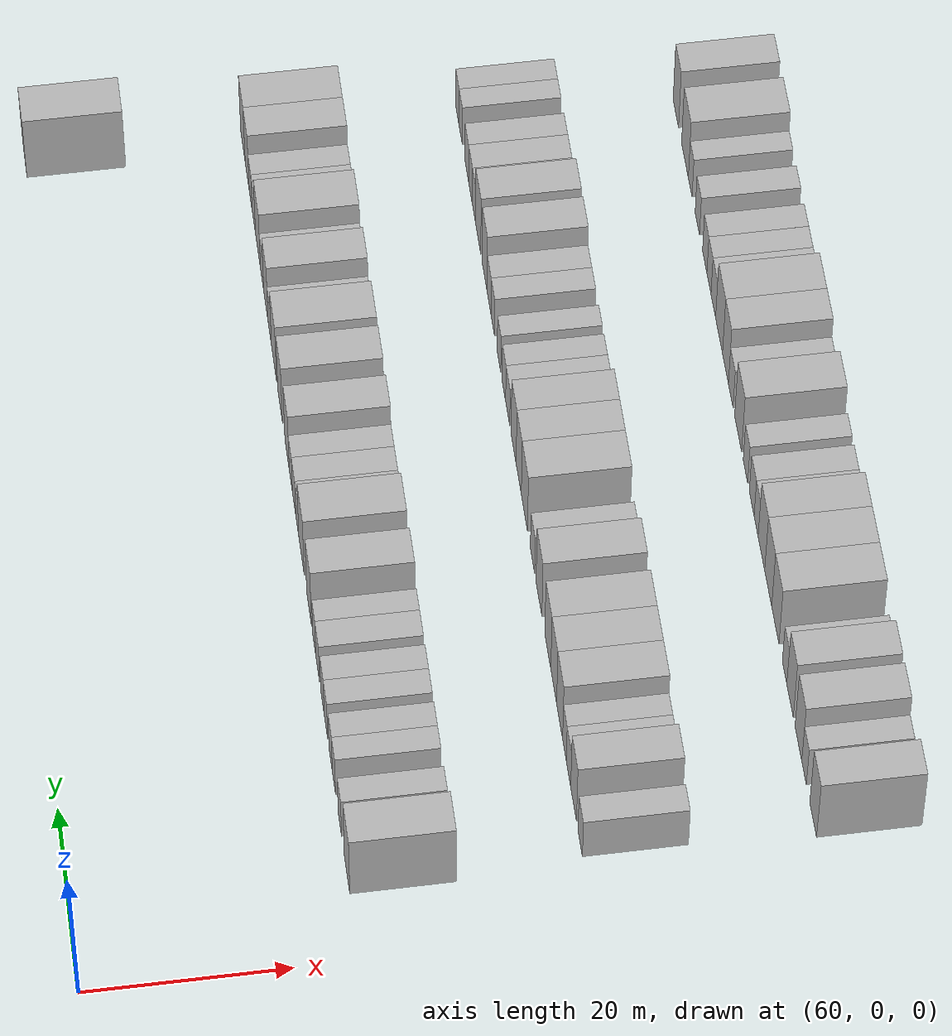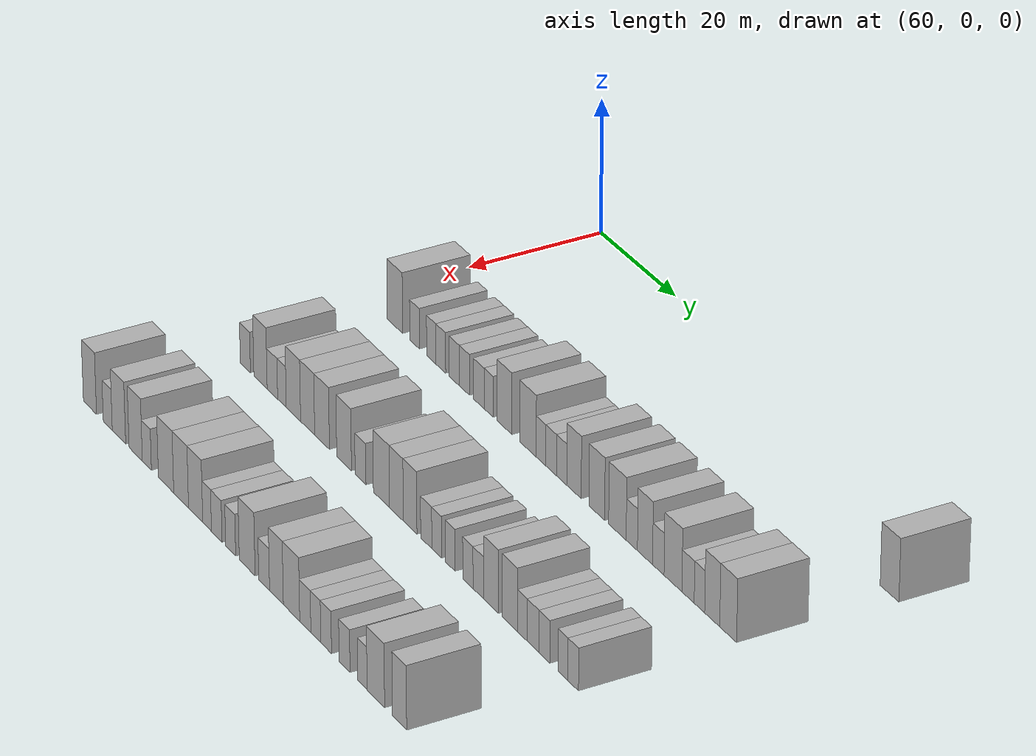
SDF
<sdf version="1.6">
 <world name="default">
  <model name="building_492">
   <static>1</static>
   <pose>69.0000 97.0537 0 0.000000 0.000000 0.000000</pose>
   <link name="link">
    <pose>0 0 4.50 0 0 0</pose>
    <collision name="collision"><geometry><box><size>10.0000 4.4009 9.0000</size></box></geometry></collision>
    <visual name="visual">
     <cast_shadows>0</cast_shadows>
     <geometry><box><size>10.0000 4.4009 9.0000</size></box></geometry>
     <material>
      <script>
       <uri>model://HANNAS_wall/materials/scripts</uri>
       <uri>model://HANNAS_wall/materials/textures</uri>
       <name>vrc/HANNAS_wall</name>
      </script>
     </material>
    </visual>
   </link>
  </model>
  <model name="building_664">
   <static>1</static>
   <pose>91.0000 9.3950 0 0.000000 0.000000 0.000000</pose>
   <link name="link">
    <pose>0 0 4.50 0 0 0</pose>
    <collision name="collision"><geometry><box><size>10.0000 4.2941 9.0000</size></box></geometry></collision>
    <visual name="visual">
     <cast_shadows>0</cast_shadows>
     <geometry><box><size>10.0000 4.2941 9.0000</size></box></geometry>
     <material>
      <script>
       <uri>model://HANNAS_wall/materials/scripts</uri>
       <uri>model://HANNAS_wall/materials/textures</uri>
       <name>vrc/HANNAS_wall</name>
      </script>
     </material>
    </visual>
   </link>
  </model>
  <model name="building_665">
   <static>1</static>
   <pose>91.0000 14.8744 0 0.000000 0.000000 0.000000</pose>
   <link name="link">
    <pose>0 0 3.00 0 0 0</pose>
    <collision name="collision"><geometry><box><size>10.0000 2.6647 6.0000</size></box></geometry></collision>
    <visual name="visual">
     <cast_shadows>0</cast_shadows>
     <geometry><box><size>10.0000 2.6647 6.0000</size></box></geometry>
     <material>
      <script>
       <uri>model://HANNAS_wall/materials/scripts</uri>
       <uri>model://HANNAS_wall/materials/textures</uri>
       <name>vrc/HANNAS_wall</name>
      </script>
     </material>
    </visual>
   </link>
  </model>
  <model name="building_666">
   <static>1</static>
   <pose>91.0000 19.4784 0 0.000000 0.000000 0.000000</pose>
   <link name="link">
    <pose>0 0 3.00 0 0 0</pose>
    <collision name="collision"><geometry><box><size>10.0000 2.5432 6.0000</size></box></geometry></collision>
    <visual name="visual">
     <cast_shadows>0</cast_shadows>
     <geometry><box><size>10.0000 2.5432 6.0000</size></box></geometry>
     <material>
      <script>
       <uri>model://HANNAS_wall/materials/scripts</uri>
       <uri>model://HANNAS_wall/materials/textures</uri>
       <name>vrc/HANNAS_wall</name>
      </script>
     </material>
    </visual>
   </link>
  </model>
  <model name="building_667">
   <static>1</static>
   <pose>91.0000 22.0852 0 0.000000 0.000000 0.000000</pose>
   <link name="link">
    <pose>0 0 3.00 0 0 0</pose>
    <collision name="collision"><geometry><box><size>10.0000 2.6705 6.0000</size></box></geometry></collision>
    <visual name="visual">
     <cast_shadows>0</cast_shadows>
     <geometry><box><size>10.0000 2.6705 6.0000</size></box></geometry>
     <material>
      <script>
       <uri>model://HANNAS_wall/materials/scripts</uri>
       <uri>model://HANNAS_wall/materials/textures</uri>
       <name>vrc/HANNAS_wall</name>
      </script>
     </material>
    </visual>
   </link>
  </model>
  <model name="building_668">
   <static>1</static>
   <pose>91.0000 25.7963 0 0.000000 0.000000 0.000000</pose>
   <link name="link">
    <pose>0 0 3.00 0 0 0</pose>
    <collision name="collision"><geometry><box><size>10.0000 2.7516 6.0000</size></box></geometry></collision>
    <visual name="visual">
     <cast_shadows>0</cast_shadows>
     <geometry><box><size>10.0000 2.7516 6.0000</size></box></geometry>
     <material>
      <script>
       <uri>model://HANNAS_wall/materials/scripts</uri>
       <uri>model://HANNAS_wall/materials/textures</uri>
       <name>vrc/HANNAS_wall</name>
      </script>
     </material>
    </visual>
   </link>
  </model>
  <model name="building_669">
   <static>1</static>
   <pose>91.0000 28.5302 0 0.000000 0.000000 0.000000</pose>
   <link name="link">
    <pose>0 0 3.00 0 0 0</pose>
    <collision name="collision"><geometry><box><size>10.0000 2.7163 6.0000</size></box></geometry></collision>
    <visual name="visual">
     <cast_shadows>0</cast_shadows>
     <geometry><box><size>10.0000 2.7163 6.0000</size></box></geometry>
     <material>
      <script>
       <uri>model://HANNAS_wall/materials/scripts</uri>
       <uri>model://HANNAS_wall/materials/textures</uri>
       <name>vrc/HANNAS_wall</name>
      </script>
     </material>
    </visual>
   </link>
  </model>
  <model name="building_670">
   <static>1</static>
   <pose>91.0000 32.3657 0 0.000000 0.000000 0.000000</pose>
   <link name="link">
    <pose>0 0 3.00 0 0 0</pose>
    <collision name="collision"><geometry><box><size>10.0000 2.9545 6.0000</size></box></geometry></collision>
    <visual name="visual">
     <cast_shadows>0</cast_shadows>
     <geometry><box><size>10.0000 2.9545 6.0000</size></box></geometry>
     <material>
      <script>
       <uri>model://HANNAS_wall/materials/scripts</uri>
       <uri>model://HANNAS_wall/materials/textures</uri>
       <name>vrc/HANNAS_wall</name>
      </script>
     </material>
    </visual>
   </link>
  </model>
  <model name="building_671">
   <static>1</static>
   <pose>91.0000 35.0655 0 0.000000 0.000000 0.000000</pose>
   <link name="link">
    <pose>0 0 3.00 0 0 0</pose>
    <collision name="collision"><geometry><box><size>10.0000 2.4452 6.0000</size></box></geometry></collision>
    <visual name="visual">
     <cast_shadows>0</cast_shadows>
     <geometry><box><size>10.0000 2.4452 6.0000</size></box></geometry>
     <material>
      <script>
       <uri>model://HANNAS_wall/materials/scripts</uri>
       <uri>model://HANNAS_wall/materials/textures</uri>
       <name>vrc/HANNAS_wall</name>
      </script>
     </material>
    </visual>
   </link>
  </model>
  <model name="building_672">
   <static>1</static>
   <pose>91.0000 39.2700 0 0.000000 0.000000 0.000000</pose>
   <link name="link">
    <pose>0 0 4.50 0 0 0</pose>
    <collision name="collision"><geometry><box><size>10.0000 3.9639 9.0000</size></box></geometry></collision>
    <visual name="visual">
     <cast_shadows>0</cast_shadows>
     <geometry><box><size>10.0000 3.9639 9.0000</size></box></geometry>
     <material>
      <script>
       <uri>model://HANNAS_wall/materials/scripts</uri>
       <uri>model://HANNAS_wall/materials/textures</uri>
       <name>vrc/HANNAS_wall</name>
      </script>
     </material>
    </visual>
   </link>
  </model>
  <model name="building_673">
   <static>1</static>
   <pose>91.0000 45.4640 0 0.000000 0.000000 0.000000</pose>
   <link name="link">
    <pose>0 0 4.50 0 0 0</pose>
    <collision name="collision"><geometry><box><size>10.0000 4.4241 9.0000</size></box></geometry></collision>
    <visual name="visual">
     <cast_shadows>0</cast_shadows>
     <geometry><box><size>10.0000 4.4241 9.0000</size></box></geometry>
     <material>
      <script>
       <uri>model://HANNAS_wall/materials/scripts</uri>
       <uri>model://HANNAS_wall/materials/textures</uri>
       <name>vrc/HANNAS_wall</name>
      </script>
     </material>
    </visual>
   </link>
  </model>
  <model name="building_674">
   <static>1</static>
   <pose>91.0000 48.8937 0 0.000000 0.000000 0.000000</pose>
   <link name="link">
    <pose>0 0 3.00 0 0 0</pose>
    <collision name="collision"><geometry><box><size>10.0000 2.4353 6.0000</size></box></geometry></collision>
    <visual name="visual">
     <cast_shadows>0</cast_shadows>
     <geometry><box><size>10.0000 2.4353 6.0000</size></box></geometry>
     <material>
      <script>
       <uri>model://HANNAS_wall/materials/scripts</uri>
       <uri>model://HANNAS_wall/materials/textures</uri>
       <name>vrc/HANNAS_wall</name>
      </script>
     </material>
    </visual>
   </link>
  </model>
  <model name="building_675">
   <static>1</static>
   <pose>91.0000 51.5279 0 0.000000 0.000000 0.000000</pose>
   <link name="link">
    <pose>0 0 3.00 0 0 0</pose>
    <collision name="collision"><geometry><box><size>10.0000 2.8330 6.0000</size></box></geometry></collision>
    <visual name="visual">
     <cast_shadows>0</cast_shadows>
     <geometry><box><size>10.0000 2.8330 6.0000</size></box></geometry>
     <material>
      <script>
       <uri>model://HANNAS_wall/materials/scripts</uri>
       <uri>model://HANNAS_wall/materials/textures</uri>
       <name>vrc/HANNAS_wall</name>
      </script>
     </material>
    </visual>
   </link>
  </model>
  <model name="building_676">
   <static>1</static>
   <pose>91.0000 54.2586 0 0.000000 0.000000 0.000000</pose>
   <link name="link">
    <pose>0 0 3.00 0 0 0</pose>
    <collision name="collision"><geometry><box><size>10.0000 2.6286 6.0000</size></box></geometry></collision>
    <visual name="visual">
     <cast_shadows>0</cast_shadows>
     <geometry><box><size>10.0000 2.6286 6.0000</size></box></geometry>
     <material>
      <script>
       <uri>model://HANNAS_wall/materials/scripts</uri>
       <uri>model://HANNAS_wall/materials/textures</uri>
       <name>vrc/HANNAS_wall</name>
      </script>
     </material>
    </visual>
   </link>
  </model>
  <model name="building_677">
   <static>1</static>
   <pose>91.0000 57.4469 0 0.000000 0.000000 0.000000</pose>
   <link name="link">
    <pose>0 0 4.50 0 0 0</pose>
    <collision name="collision"><geometry><box><size>10.0000 3.7480 9.0000</size></box></geometry></collision>
    <visual name="visual">
     <cast_shadows>0</cast_shadows>
     <geometry><box><size>10.0000 3.7480 9.0000</size></box></geometry>
     <material>
      <script>
       <uri>model://HANNAS_wall/materials/scripts</uri>
       <uri>model://HANNAS_wall/materials/textures</uri>
       <name>vrc/HANNAS_wall</name>
      </script>
     </material>
    </visual>
   </link>
  </model>
  <model name="building_678">
   <static>1</static>
   <pose>91.0000 63.3174 0 0.000000 0.000000 0.000000</pose>
   <link name="link">
    <pose>0 0 4.50 0 0 0</pose>
    <collision name="collision"><geometry><box><size>10.0000 3.9929 9.0000</size></box></geometry></collision>
    <visual name="visual">
     <cast_shadows>0</cast_shadows>
     <geometry><box><size>10.0000 3.9929 9.0000</size></box></geometry>
     <material>
      <script>
       <uri>model://HANNAS_wall/materials/scripts</uri>
       <uri>model://HANNAS_wall/materials/textures</uri>
       <name>vrc/HANNAS_wall</name>
      </script>
     </material>
    </visual>
   </link>
  </model>
  <model name="building_679">
   <static>1</static>
   <pose>91.0000 68.5317 0 0.000000 0.000000 0.000000</pose>
   <link name="link">
    <pose>0 0 4.50 0 0 0</pose>
    <collision name="collision"><geometry><box><size>10.0000 4.4358 9.0000</size></box></geometry></collision>
    <visual name="visual">
     <cast_shadows>0</cast_shadows>
     <geometry><box><size>10.0000 4.4358 9.0000</size></box></geometry>
     <material>
      <script>
       <uri>model://HANNAS_wall/materials/scripts</uri>
       <uri>model://HANNAS_wall/materials/textures</uri>
       <name>vrc/HANNAS_wall</name>
      </script>
     </material>
    </visual>
   </link>
  </model>
  <model name="building_680">
   <static>1</static>
   <pose>91.0000 72.1572 0 0.000000 0.000000 0.000000</pose>
   <link name="link">
    <pose>0 0 3.00 0 0 0</pose>
    <collision name="collision"><geometry><box><size>10.0000 2.8151 6.0000</size></box></geometry></collision>
    <visual name="visual">
     <cast_shadows>0</cast_shadows>
     <geometry><box><size>10.0000 2.8151 6.0000</size></box></geometry>
     <material>
      <script>
       <uri>model://HANNAS_wall/materials/scripts</uri>
       <uri>model://HANNAS_wall/materials/textures</uri>
       <name>vrc/HANNAS_wall</name>
      </script>
     </material>
    </visual>
   </link>
  </model>
  <model name="building_681">
   <static>1</static>
   <pose>91.0000 75.4545 0 0.000000 0.000000 0.000000</pose>
   <link name="link">
    <pose>0 0 4.50 0 0 0</pose>
    <collision name="collision"><geometry><box><size>10.0000 3.7795 9.0000</size></box></geometry></collision>
    <visual name="visual">
     <cast_shadows>0</cast_shadows>
     <geometry><box><size>10.0000 3.7795 9.0000</size></box></geometry>
     <material>
      <script>
       <uri>model://HANNAS_wall/materials/scripts</uri>
       <uri>model://HANNAS_wall/materials/textures</uri>
       <name>vrc/HANNAS_wall</name>
      </script>
     </material>
    </visual>
   </link>
  </model>
  <model name="building_682">
   <static>1</static>
   <pose>91.0000 78.7687 0 0.000000 0.000000 0.000000</pose>
   <link name="link">
    <pose>0 0 3.00 0 0 0</pose>
    <collision name="collision"><geometry><box><size>10.0000 2.8488 6.0000</size></box></geometry></collision>
    <visual name="visual">
     <cast_shadows>0</cast_shadows>
     <geometry><box><size>10.0000 2.8488 6.0000</size></box></geometry>
     <material>
      <script>
       <uri>model://HANNAS_wall/materials/scripts</uri>
       <uri>model://HANNAS_wall/materials/textures</uri>
       <name>vrc/HANNAS_wall</name>
      </script>
     </material>
    </visual>
   </link>
  </model>
  <model name="building_683">
   <static>1</static>
   <pose>91.0000 82.3930 0 0.000000 0.000000 0.000000</pose>
   <link name="link">
    <pose>0 0 4.50 0 0 0</pose>
    <collision name="collision"><geometry><box><size>10.0000 4.3999 9.0000</size></box></geometry></collision>
    <visual name="visual">
     <cast_shadows>0</cast_shadows>
     <geometry><box><size>10.0000 4.3999 9.0000</size></box></geometry>
     <material>
      <script>
       <uri>model://HANNAS_wall/materials/scripts</uri>
       <uri>model://HANNAS_wall/materials/textures</uri>
       <name>vrc/HANNAS_wall</name>
      </script>
     </material>
    </visual>
   </link>
  </model>
  <model name="building_684">
   <static>1</static>
   <pose>91.0000 86.0927 0 0.000000 0.000000 0.000000</pose>
   <link name="link">
    <pose>0 0 3.00 0 0 0</pose>
    <collision name="collision"><geometry><box><size>10.0000 2.9996 6.0000</size></box></geometry></collision>
    <visual name="visual">
     <cast_shadows>0</cast_shadows>
     <geometry><box><size>10.0000 2.9996 6.0000</size></box></geometry>
     <material>
      <script>
       <uri>model://HANNAS_wall/materials/scripts</uri>
       <uri>model://HANNAS_wall/materials/textures</uri>
       <name>vrc/HANNAS_wall</name>
      </script>
     </material>
    </visual>
   </link>
  </model>
  <model name="building_685">
   <static>1</static>
   <pose>91.0000 88.8676 0 0.000000 0.000000 0.000000</pose>
   <link name="link">
    <pose>0 0 3.00 0 0 0</pose>
    <collision name="collision"><geometry><box><size>10.0000 2.5501 6.0000</size></box></geometry></collision>
    <visual name="visual">
     <cast_shadows>0</cast_shadows>
     <geometry><box><size>10.0000 2.5501 6.0000</size></box></geometry>
     <material>
      <script>
       <uri>model://HANNAS_wall/materials/scripts</uri>
       <uri>model://HANNAS_wall/materials/textures</uri>
       <name>vrc/HANNAS_wall</name>
      </script>
     </material>
    </visual>
   </link>
  </model>
  <model name="building_686">
   <static>1</static>
   <pose>91.0000 91.9661 0 0.000000 0.000000 0.000000</pose>
   <link name="link">
    <pose>0 0 4.50 0 0 0</pose>
    <collision name="collision"><geometry><box><size>10.0000 3.6469 9.0000</size></box></geometry></collision>
    <visual name="visual">
     <cast_shadows>0</cast_shadows>
     <geometry><box><size>10.0000 3.6469 9.0000</size></box></geometry>
     <material>
      <script>
       <uri>model://HANNAS_wall/materials/scripts</uri>
       <uri>model://HANNAS_wall/materials/textures</uri>
       <name>vrc/HANNAS_wall</name>
      </script>
     </material>
    </visual>
   </link>
  </model>
  <model name="building_687">
   <static>1</static>
   <pose>91.0000 95.8221 0 0.000000 0.000000 0.000000</pose>
   <link name="link">
    <pose>0 0 4.50 0 0 0</pose>
    <collision name="collision"><geometry><box><size>10.0000 4.0650 9.0000</size></box></geometry></collision>
    <visual name="visual">
     <cast_shadows>0</cast_shadows>
     <geometry><box><size>10.0000 4.0650 9.0000</size></box></geometry>
     <material>
      <script>
       <uri>model://HANNAS_wall/materials/scripts</uri>
       <uri>model://HANNAS_wall/materials/textures</uri>
       <name>vrc/HANNAS_wall</name>
      </script>
     </material>
    </visual>
   </link>
  </model>
  <model name="building_846">
   <static>1</static>
   <pose>113.0000 9.8462 0 0.000000 0.000000 0.000000</pose>
   <link name="link">
    <pose>0 0 3.00 0 0 0</pose>
    <collision name="collision"><geometry><box><size>10.0000 2.9001 6.0000</size></box></geometry></collision>
    <visual name="visual">
     <cast_shadows>0</cast_shadows>
     <geometry><box><size>10.0000 2.9001 6.0000</size></box></geometry>
     <material>
      <script>
       <uri>model://HANNAS_wall/materials/scripts</uri>
       <uri>model://HANNAS_wall/materials/textures</uri>
       <name>vrc/HANNAS_wall</name>
      </script>
     </material>
    </visual>
   </link>
  </model>
  <model name="building_847">
   <static>1</static>
   <pose>113.0000 14.1855 0 0.000000 0.000000 0.000000</pose>
   <link name="link">
    <pose>0 0 4.50 0 0 0</pose>
    <collision name="collision"><geometry><box><size>10.0000 3.7785 9.0000</size></box></geometry></collision>
    <visual name="visual">
     <cast_shadows>0</cast_shadows>
     <geometry><box><size>10.0000 3.7785 9.0000</size></box></geometry>
     <material>
      <script>
       <uri>model://HANNAS_wall/materials/scripts</uri>
       <uri>model://HANNAS_wall/materials/textures</uri>
       <name>vrc/HANNAS_wall</name>
      </script>
     </material>
    </visual>
   </link>
  </model>
  <model name="building_848">
   <static>1</static>
   <pose>113.0000 17.5557 0 0.000000 0.000000 0.000000</pose>
   <link name="link">
    <pose>0 0 3.00 0 0 0</pose>
    <collision name="collision"><geometry><box><size>10.0000 2.9619 6.0000</size></box></geometry></collision>
    <visual name="visual">
     <cast_shadows>0</cast_shadows>
     <geometry><box><size>10.0000 2.9619 6.0000</size></box></geometry>
     <material>
      <script>
       <uri>model://HANNAS_wall/materials/scripts</uri>
       <uri>model://HANNAS_wall/materials/textures</uri>
       <name>vrc/HANNAS_wall</name>
      </script>
     </material>
    </visual>
   </link>
  </model>
  <model name="building_849">
   <static>1</static>
   <pose>113.0000 20.2551 0 0.000000 0.000000 0.000000</pose>
   <link name="link">
    <pose>0 0 3.00 0 0 0</pose>
    <collision name="collision"><geometry><box><size>10.0000 2.4370 6.0000</size></box></geometry></collision>
    <visual name="visual">
     <cast_shadows>0</cast_shadows>
     <geometry><box><size>10.0000 2.4370 6.0000</size></box></geometry>
     <material>
      <script>
       <uri>model://HANNAS_wall/materials/scripts</uri>
       <uri>model://HANNAS_wall/materials/textures</uri>
       <name>vrc/HANNAS_wall</name>
      </script>
     </material>
    </visual>
   </link>
  </model>
  <model name="building_850">
   <static>1</static>
   <pose>113.0000 23.4815 0 0.000000 0.000000 0.000000</pose>
   <link name="link">
    <pose>0 0 4.50 0 0 0</pose>
    <collision name="collision"><geometry><box><size>10.0000 4.0156 9.0000</size></box></geometry></collision>
    <visual name="visual">
     <cast_shadows>0</cast_shadows>
     <geometry><box><size>10.0000 4.0156 9.0000</size></box></geometry>
     <material>
      <script>
       <uri>model://HANNAS_wall/materials/scripts</uri>
       <uri>model://HANNAS_wall/materials/textures</uri>
       <name>vrc/HANNAS_wall</name>
      </script>
     </material>
    </visual>
   </link>
  </model>
  <model name="building_851">
   <static>1</static>
   <pose>113.0000 27.4517 0 0.000000 0.000000 0.000000</pose>
   <link name="link">
    <pose>0 0 4.50 0 0 0</pose>
    <collision name="collision"><geometry><box><size>10.0000 3.9248 9.0000</size></box></geometry></collision>
    <visual name="visual">
     <cast_shadows>0</cast_shadows>
     <geometry><box><size>10.0000 3.9248 9.0000</size></box></geometry>
     <material>
      <script>
       <uri>model://HANNAS_wall/materials/scripts</uri>
       <uri>model://HANNAS_wall/materials/textures</uri>
       <name>vrc/HANNAS_wall</name>
      </script>
     </material>
    </visual>
   </link>
  </model>
  <model name="building_852">
   <static>1</static>
   <pose>113.0000 31.4568 0 0.000000 0.000000 0.000000</pose>
   <link name="link">
    <pose>0 0 4.50 0 0 0</pose>
    <collision name="collision"><geometry><box><size>10.0000 4.0853 9.0000</size></box></geometry></collision>
    <visual name="visual">
     <cast_shadows>0</cast_shadows>
     <geometry><box><size>10.0000 4.0853 9.0000</size></box></geometry>
     <material>
      <script>
       <uri>model://HANNAS_wall/materials/scripts</uri>
       <uri>model://HANNAS_wall/materials/textures</uri>
       <name>vrc/HANNAS_wall</name>
      </script>
     </material>
    </visual>
   </link>
  </model>
  <model name="building_853">
   <static>1</static>
   <pose>113.0000 37.5181 0 0.000000 0.000000 0.000000</pose>
   <link name="link">
    <pose>0 0 4.50 0 0 0</pose>
    <collision name="collision"><geometry><box><size>10.0000 4.0373 9.0000</size></box></geometry></collision>
    <visual name="visual">
     <cast_shadows>0</cast_shadows>
     <geometry><box><size>10.0000 4.0373 9.0000</size></box></geometry>
     <material>
      <script>
       <uri>model://HANNAS_wall/materials/scripts</uri>
       <uri>model://HANNAS_wall/materials/textures</uri>
       <name>vrc/HANNAS_wall</name>
      </script>
     </material>
    </visual>
   </link>
  </model>
  <model name="building_854">
   <static>1</static>
   <pose>113.0000 42.0087 0 0.000000 0.000000 0.000000</pose>
   <link name="link">
    <pose>0 0 3.00 0 0 0</pose>
    <collision name="collision"><geometry><box><size>10.0000 2.9440 6.0000</size></box></geometry></collision>
    <visual name="visual">
     <cast_shadows>0</cast_shadows>
     <geometry><box><size>10.0000 2.9440 6.0000</size></box></geometry>
     <material>
      <script>
       <uri>model://HANNAS_wall/materials/scripts</uri>
       <uri>model://HANNAS_wall/materials/textures</uri>
       <name>vrc/HANNAS_wall</name>
      </script>
     </material>
    </visual>
   </link>
  </model>
  <model name="building_855">
   <static>1</static>
   <pose>113.0000 47.6542 0 0.000000 0.000000 0.000000</pose>
   <link name="link">
    <pose>0 0 4.50 0 0 0</pose>
    <collision name="collision"><geometry><box><size>10.0000 4.3469 9.0000</size></box></geometry></collision>
    <visual name="visual">
     <cast_shadows>0</cast_shadows>
     <geometry><box><size>10.0000 4.3469 9.0000</size></box></geometry>
     <material>
      <script>
       <uri>model://HANNAS_wall/materials/scripts</uri>
       <uri>model://HANNAS_wall/materials/textures</uri>
       <name>vrc/HANNAS_wall</name>
      </script>
     </material>
    </visual>
   </link>
  </model>
  <model name="building_856">
   <static>1</static>
   <pose>113.0000 51.6684 0 0.000000 0.000000 0.000000</pose>
   <link name="link">
    <pose>0 0 4.50 0 0 0</pose>
    <collision name="collision"><geometry><box><size>10.0000 3.6815 9.0000</size></box></geometry></collision>
    <visual name="visual">
     <cast_shadows>0</cast_shadows>
     <geometry><box><size>10.0000 3.6815 9.0000</size></box></geometry>
     <material>
      <script>
       <uri>model://HANNAS_wall/materials/scripts</uri>
       <uri>model://HANNAS_wall/materials/textures</uri>
       <name>vrc/HANNAS_wall</name>
      </script>
     </material>
    </visual>
   </link>
  </model>
  <model name="building_857">
   <static>1</static>
   <pose>113.0000 55.3096 0 0.000000 0.000000 0.000000</pose>
   <link name="link">
    <pose>0 0 4.50 0 0 0</pose>
    <collision name="collision"><geometry><box><size>10.0000 3.6010 9.0000</size></box></geometry></collision>
    <visual name="visual">
     <cast_shadows>0</cast_shadows>
     <geometry><box><size>10.0000 3.6010 9.0000</size></box></geometry>
     <material>
      <script>
       <uri>model://HANNAS_wall/materials/scripts</uri>
       <uri>model://HANNAS_wall/materials/textures</uri>
       <name>vrc/HANNAS_wall</name>
      </script>
     </material>
    </visual>
   </link>
  </model>
  <model name="building_858">
   <static>1</static>
   <pose>113.0000 59.5729 0 0.000000 0.000000 0.000000</pose>
   <link name="link">
    <pose>0 0 3.00 0 0 0</pose>
    <collision name="collision"><geometry><box><size>10.0000 2.9256 6.0000</size></box></geometry></collision>
    <visual name="visual">
     <cast_shadows>0</cast_shadows>
     <geometry><box><size>10.0000 2.9256 6.0000</size></box></geometry>
     <material>
      <script>
       <uri>model://HANNAS_wall/materials/scripts</uri>
       <uri>model://HANNAS_wall/materials/textures</uri>
       <name>vrc/HANNAS_wall</name>
      </script>
     </material>
    </visual>
   </link>
  </model>
  <model name="building_859">
   <static>1</static>
   <pose>113.0000 62.3086 0 0.000000 0.000000 0.000000</pose>
   <link name="link">
    <pose>0 0 3.00 0 0 0</pose>
    <collision name="collision"><geometry><box><size>10.0000 2.5459 6.0000</size></box></geometry></collision>
    <visual name="visual">
     <cast_shadows>0</cast_shadows>
     <geometry><box><size>10.0000 2.5459 6.0000</size></box></geometry>
     <material>
      <script>
       <uri>model://HANNAS_wall/materials/scripts</uri>
       <uri>model://HANNAS_wall/materials/textures</uri>
       <name>vrc/HANNAS_wall</name>
      </script>
     </material>
    </visual>
   </link>
  </model>
  <model name="building_860">
   <static>1</static>
   <pose>113.0000 65.8433 0 0.000000 0.000000 0.000000</pose>
   <link name="link">
    <pose>0 0 3.00 0 0 0</pose>
    <collision name="collision"><geometry><box><size>10.0000 2.5235 6.0000</size></box></geometry></collision>
    <visual name="visual">
     <cast_shadows>0</cast_shadows>
     <geometry><box><size>10.0000 2.5235 6.0000</size></box></geometry>
     <material>
      <script>
       <uri>model://HANNAS_wall/materials/scripts</uri>
       <uri>model://HANNAS_wall/materials/textures</uri>
       <name>vrc/HANNAS_wall</name>
      </script>
     </material>
    </visual>
   </link>
  </model>
  <model name="building_861">
   <static>1</static>
   <pose>113.0000 70.4283 0 0.000000 0.000000 0.000000</pose>
   <link name="link">
    <pose>0 0 3.00 0 0 0</pose>
    <collision name="collision"><geometry><box><size>10.0000 2.6465 6.0000</size></box></geometry></collision>
    <visual name="visual">
     <cast_shadows>0</cast_shadows>
     <geometry><box><size>10.0000 2.6465 6.0000</size></box></geometry>
     <material>
      <script>
       <uri>model://HANNAS_wall/materials/scripts</uri>
       <uri>model://HANNAS_wall/materials/textures</uri>
       <name>vrc/HANNAS_wall</name>
      </script>
     </material>
    </visual>
   </link>
  </model>
  <model name="building_862">
   <static>1</static>
   <pose>113.0000 73.1392 0 0.000000 0.000000 0.000000</pose>
   <link name="link">
    <pose>0 0 3.00 0 0 0</pose>
    <collision name="collision"><geometry><box><size>10.0000 2.7754 6.0000</size></box></geometry></collision>
    <visual name="visual">
     <cast_shadows>0</cast_shadows>
     <geometry><box><size>10.0000 2.7754 6.0000</size></box></geometry>
     <material>
      <script>
       <uri>model://HANNAS_wall/materials/scripts</uri>
       <uri>model://HANNAS_wall/materials/textures</uri>
       <name>vrc/HANNAS_wall</name>
      </script>
     </material>
    </visual>
   </link>
  </model>
  <model name="building_863">
   <static>1</static>
   <pose>113.0000 76.3973 0 0.000000 0.000000 0.000000</pose>
   <link name="link">
    <pose>0 0 4.50 0 0 0</pose>
    <collision name="collision"><geometry><box><size>10.0000 3.7408 9.0000</size></box></geometry></collision>
    <visual name="visual">
     <cast_shadows>0</cast_shadows>
     <geometry><box><size>10.0000 3.7408 9.0000</size></box></geometry>
     <material>
      <script>
       <uri>model://HANNAS_wall/materials/scripts</uri>
       <uri>model://HANNAS_wall/materials/textures</uri>
       <name>vrc/HANNAS_wall</name>
      </script>
     </material>
    </visual>
   </link>
  </model>
  <model name="building_864">
   <static>1</static>
   <pose>113.0000 81.1769 0 0.000000 0.000000 0.000000</pose>
   <link name="link">
    <pose>0 0 4.50 0 0 0</pose>
    <collision name="collision"><geometry><box><size>10.0000 3.8186 9.0000</size></box></geometry></collision>
    <visual name="visual">
     <cast_shadows>0</cast_shadows>
     <geometry><box><size>10.0000 3.8186 9.0000</size></box></geometry>
     <material>
      <script>
       <uri>model://HANNAS_wall/materials/scripts</uri>
       <uri>model://HANNAS_wall/materials/textures</uri>
       <name>vrc/HANNAS_wall</name>
      </script>
     </material>
    </visual>
   </link>
  </model>
  <model name="building_865">
   <static>1</static>
   <pose>113.0000 84.3035 0 0.000000 0.000000 0.000000</pose>
   <link name="link">
    <pose>0 0 3.00 0 0 0</pose>
    <collision name="collision"><geometry><box><size>10.0000 2.4344 6.0000</size></box></geometry></collision>
    <visual name="visual">
     <cast_shadows>0</cast_shadows>
     <geometry><box><size>10.0000 2.4344 6.0000</size></box></geometry>
     <material>
      <script>
       <uri>model://HANNAS_wall/materials/scripts</uri>
       <uri>model://HANNAS_wall/materials/textures</uri>
       <name>vrc/HANNAS_wall</name>
      </script>
     </material>
    </visual>
   </link>
  </model>
  <model name="building_866">
   <static>1</static>
   <pose>113.0000 87.0041 0 0.000000 0.000000 0.000000</pose>
   <link name="link">
    <pose>0 0 3.00 0 0 0</pose>
    <collision name="collision"><geometry><box><size>10.0000 2.9670 6.0000</size></box></geometry></collision>
    <visual name="visual">
     <cast_shadows>0</cast_shadows>
     <geometry><box><size>10.0000 2.9670 6.0000</size></box></geometry>
     <material>
      <script>
       <uri>model://HANNAS_wall/materials/scripts</uri>
       <uri>model://HANNAS_wall/materials/textures</uri>
       <name>vrc/HANNAS_wall</name>
      </script>
     </material>
    </visual>
   </link>
  </model>
  <model name="building_867">
   <static>1</static>
   <pose>113.0000 89.8498 0 0.000000 0.000000 0.000000</pose>
   <link name="link">
    <pose>0 0 3.00 0 0 0</pose>
    <collision name="collision"><geometry><box><size>10.0000 2.7244 6.0000</size></box></geometry></collision>
    <visual name="visual">
     <cast_shadows>0</cast_shadows>
     <geometry><box><size>10.0000 2.7244 6.0000</size></box></geometry>
     <material>
      <script>
       <uri>model://HANNAS_wall/materials/scripts</uri>
       <uri>model://HANNAS_wall/materials/textures</uri>
       <name>vrc/HANNAS_wall</name>
      </script>
     </material>
    </visual>
   </link>
  </model>
  <model name="building_868">
   <static>1</static>
   <pose>113.0000 94.4331 0 0.000000 0.000000 0.000000</pose>
   <link name="link">
    <pose>0 0 3.00 0 0 0</pose>
    <collision name="collision"><geometry><box><size>10.0000 2.4422 6.0000</size></box></geometry></collision>
    <visual name="visual">
     <cast_shadows>0</cast_shadows>
     <geometry><box><size>10.0000 2.4422 6.0000</size></box></geometry>
     <material>
      <script>
       <uri>model://HANNAS_wall/materials/scripts</uri>
       <uri>model://HANNAS_wall/materials/textures</uri>
       <name>vrc/HANNAS_wall</name>
      </script>
     </material>
    </visual>
   </link>
  </model>
  <model name="building_869">
   <static>1</static>
   <pose>113.0000 96.9492 0 0.000000 0.000000 0.000000</pose>
   <link name="link">
    <pose>0 0 3.00 0 0 0</pose>
    <collision name="collision"><geometry><box><size>10.0000 2.5900 6.0000</size></box></geometry></collision>
    <visual name="visual">
     <cast_shadows>0</cast_shadows>
     <geometry><box><size>10.0000 2.5900 6.0000</size></box></geometry>
     <material>
      <script>
       <uri>model://HANNAS_wall/materials/scripts</uri>
       <uri>model://HANNAS_wall/materials/textures</uri>
       <name>vrc/HANNAS_wall</name>
      </script>
     </material>
    </visual>
   </link>
  </model>
  <model name="building_1044">
   <static>1</static>
   <pose>135.0000 9.5366 0 0.000000 0.000000 0.000000</pose>
   <link name="link">
    <pose>0 0 4.50 0 0 0</pose>
    <collision name="collision"><geometry><box><size>10.0000 3.8575 9.0000</size></box></geometry></collision>
    <visual name="visual">
     <cast_shadows>0</cast_shadows>
     <geometry><box><size>10.0000 3.8575 9.0000</size></box></geometry>
     <material>
      <script>
       <uri>model://HANNAS_wall/materials/scripts</uri>
       <uri>model://HANNAS_wall/materials/textures</uri>
       <name>vrc/HANNAS_wall</name>
      </script>
     </material>
    </visual>
   </link>
  </model>
  <model name="building_1045">
   <static>1</static>
   <pose>135.0000 14.7791 0 0.000000 0.000000 0.000000</pose>
   <link name="link">
    <pose>0 0 3.00 0 0 0</pose>
    <collision name="collision"><geometry><box><size>10.0000 2.6275 6.0000</size></box></geometry></collision>
    <visual name="visual">
     <cast_shadows>0</cast_shadows>
     <geometry><box><size>10.0000 2.6275 6.0000</size></box></geometry>
     <material>
      <script>
       <uri>model://HANNAS_wall/materials/scripts</uri>
       <uri>model://HANNAS_wall/materials/textures</uri>
       <name>vrc/HANNAS_wall</name>
      </script>
     </material>
    </visual>
   </link>
  </model>
  <model name="building_1046">
   <static>1</static>
   <pose>135.0000 18.0438 0 0.000000 0.000000 0.000000</pose>
   <link name="link">
    <pose>0 0 4.50 0 0 0</pose>
    <collision name="collision"><geometry><box><size>10.0000 3.9020 9.0000</size></box></geometry></collision>
    <visual name="visual">
     <cast_shadows>0</cast_shadows>
     <geometry><box><size>10.0000 3.9020 9.0000</size></box></geometry>
     <material>
      <script>
       <uri>model://HANNAS_wall/materials/scripts</uri>
       <uri>model://HANNAS_wall/materials/textures</uri>
       <name>vrc/HANNAS_wall</name>
      </script>
     </material>
    </visual>
   </link>
  </model>
  <model name="building_1047">
   <static>1</static>
   <pose>135.0000 22.9029 0 0.000000 0.000000 0.000000</pose>
   <link name="link">
    <pose>0 0 4.50 0 0 0</pose>
    <collision name="collision"><geometry><box><size>10.0000 3.8162 9.0000</size></box></geometry></collision>
    <visual name="visual">
     <cast_shadows>0</cast_shadows>
     <geometry><box><size>10.0000 3.8162 9.0000</size></box></geometry>
     <material>
      <script>
       <uri>model://HANNAS_wall/materials/scripts</uri>
       <uri>model://HANNAS_wall/materials/textures</uri>
       <name>vrc/HANNAS_wall</name>
      </script>
     </material>
    </visual>
   </link>
  </model>
  <model name="building_1048">
   <static>1</static>
   <pose>135.0000 26.1125 0 0.000000 0.000000 0.000000</pose>
   <link name="link">
    <pose>0 0 3.00 0 0 0</pose>
    <collision name="collision"><geometry><box><size>10.0000 2.6030 6.0000</size></box></geometry></collision>
    <visual name="visual">
     <cast_shadows>0</cast_shadows>
     <geometry><box><size>10.0000 2.6030 6.0000</size></box></geometry>
     <material>
      <script>
       <uri>model://HANNAS_wall/materials/scripts</uri>
       <uri>model://HANNAS_wall/materials/textures</uri>
       <name>vrc/HANNAS_wall</name>
      </script>
     </material>
    </visual>
   </link>
  </model>
  <model name="building_1049">
   <static>1</static>
   <pose>135.0000 31.5904 0 0.000000 0.000000 0.000000</pose>
   <link name="link">
    <pose>0 0 4.50 0 0 0</pose>
    <collision name="collision"><geometry><box><size>10.0000 4.3529 9.0000</size></box></geometry></collision>
    <visual name="visual">
     <cast_shadows>0</cast_shadows>
     <geometry><box><size>10.0000 4.3529 9.0000</size></box></geometry>
     <material>
      <script>
       <uri>model://HANNAS_wall/materials/scripts</uri>
       <uri>model://HANNAS_wall/materials/textures</uri>
       <name>vrc/HANNAS_wall</name>
      </script>
     </material>
    </visual>
   </link>
  </model>
  <model name="building_1050">
   <static>1</static>
   <pose>135.0000 35.8610 0 0.000000 0.000000 0.000000</pose>
   <link name="link">
    <pose>0 0 4.50 0 0 0</pose>
    <collision name="collision"><geometry><box><size>10.0000 4.1883 9.0000</size></box></geometry></collision>
    <visual name="visual">
     <cast_shadows>0</cast_shadows>
     <geometry><box><size>10.0000 4.1883 9.0000</size></box></geometry>
     <material>
      <script>
       <uri>model://HANNAS_wall/materials/scripts</uri>
       <uri>model://HANNAS_wall/materials/textures</uri>
       <name>vrc/HANNAS_wall</name>
      </script>
     </material>
    </visual>
   </link>
  </model>
  <model name="building_1051">
   <static>1</static>
   <pose>135.0000 39.9455 0 0.000000 0.000000 0.000000</pose>
   <link name="link">
    <pose>0 0 4.50 0 0 0</pose>
    <collision name="collision"><geometry><box><size>10.0000 3.9806 9.0000</size></box></geometry></collision>
    <visual name="visual">
     <cast_shadows>0</cast_shadows>
     <geometry><box><size>10.0000 3.9806 9.0000</size></box></geometry>
     <material>
      <script>
       <uri>model://HANNAS_wall/materials/scripts</uri>
       <uri>model://HANNAS_wall/materials/textures</uri>
       <name>vrc/HANNAS_wall</name>
      </script>
     </material>
    </visual>
   </link>
  </model>
  <model name="building_1052">
   <static>1</static>
   <pose>135.0000 43.1475 0 0.000000 0.000000 0.000000</pose>
   <link name="link">
    <pose>0 0 3.00 0 0 0</pose>
    <collision name="collision"><geometry><box><size>10.0000 2.4235 6.0000</size></box></geometry></collision>
    <visual name="visual">
     <cast_shadows>0</cast_shadows>
     <geometry><box><size>10.0000 2.4235 6.0000</size></box></geometry>
     <material>
      <script>
       <uri>model://HANNAS_wall/materials/scripts</uri>
       <uri>model://HANNAS_wall/materials/textures</uri>
       <name>vrc/HANNAS_wall</name>
      </script>
     </material>
    </visual>
   </link>
  </model>
  <model name="building_1053">
   <static>1</static>
   <pose>135.0000 45.8334 0 0.000000 0.000000 0.000000</pose>
   <link name="link">
    <pose>0 0 3.00 0 0 0</pose>
    <collision name="collision"><geometry><box><size>10.0000 2.9483 6.0000</size></box></geometry></collision>
    <visual name="visual">
     <cast_shadows>0</cast_shadows>
     <geometry><box><size>10.0000 2.9483 6.0000</size></box></geometry>
     <material>
      <script>
       <uri>model://HANNAS_wall/materials/scripts</uri>
       <uri>model://HANNAS_wall/materials/textures</uri>
       <name>vrc/HANNAS_wall</name>
      </script>
     </material>
    </visual>
   </link>
  </model>
  <model name="building_1054">
   <static>1</static>
   <pose>135.0000 49.6780 0 0.000000 0.000000 0.000000</pose>
   <link name="link">
    <pose>0 0 3.00 0 0 0</pose>
    <collision name="collision"><geometry><box><size>10.0000 2.7409 6.0000</size></box></geometry></collision>
    <visual name="visual">
     <cast_shadows>0</cast_shadows>
     <geometry><box><size>10.0000 2.7409 6.0000</size></box></geometry>
     <material>
      <script>
       <uri>model://HANNAS_wall/materials/scripts</uri>
       <uri>model://HANNAS_wall/materials/textures</uri>
       <name>vrc/HANNAS_wall</name>
      </script>
     </material>
    </visual>
   </link>
  </model>
  <model name="building_1055">
   <static>1</static>
   <pose>135.0000 54.2032 0 0.000000 0.000000 0.000000</pose>
   <link name="link">
    <pose>0 0 4.50 0 0 0</pose>
    <collision name="collision"><geometry><box><size>10.0000 4.3094 9.0000</size></box></geometry></collision>
    <visual name="visual">
     <cast_shadows>0</cast_shadows>
     <geometry><box><size>10.0000 4.3094 9.0000</size></box></geometry>
     <material>
      <script>
       <uri>model://HANNAS_wall/materials/scripts</uri>
       <uri>model://HANNAS_wall/materials/textures</uri>
       <name>vrc/HANNAS_wall</name>
      </script>
     </material>
    </visual>
   </link>
  </model>
  <model name="building_1056">
   <static>1</static>
   <pose>135.0000 58.8172 0 0.000000 0.000000 0.000000</pose>
   <link name="link">
    <pose>0 0 3.00 0 0 0</pose>
    <collision name="collision"><geometry><box><size>10.0000 2.9186 6.0000</size></box></geometry></collision>
    <visual name="visual">
     <cast_shadows>0</cast_shadows>
     <geometry><box><size>10.0000 2.9186 6.0000</size></box></geometry>
     <material>
      <script>
       <uri>model://HANNAS_wall/materials/scripts</uri>
       <uri>model://HANNAS_wall/materials/textures</uri>
       <name>vrc/HANNAS_wall</name>
      </script>
     </material>
    </visual>
   </link>
  </model>
  <model name="building_1057">
   <static>1</static>
   <pose>135.0000 62.1367 0 0.000000 0.000000 0.000000</pose>
   <link name="link">
    <pose>0 0 4.50 0 0 0</pose>
    <collision name="collision"><geometry><box><size>10.0000 3.7204 9.0000</size></box></geometry></collision>
    <visual name="visual">
     <cast_shadows>0</cast_shadows>
     <geometry><box><size>10.0000 3.7204 9.0000</size></box></geometry>
     <material>
      <script>
       <uri>model://HANNAS_wall/materials/scripts</uri>
       <uri>model://HANNAS_wall/materials/textures</uri>
       <name>vrc/HANNAS_wall</name>
      </script>
     </material>
    </visual>
   </link>
  </model>
  <model name="building_1058">
   <static>1</static>
   <pose>135.0000 66.1841 0 0.000000 0.000000 0.000000</pose>
   <link name="link">
    <pose>0 0 4.50 0 0 0</pose>
    <collision name="collision"><geometry><box><size>10.0000 4.3744 9.0000</size></box></geometry></collision>
    <visual name="visual">
     <cast_shadows>0</cast_shadows>
     <geometry><box><size>10.0000 4.3744 9.0000</size></box></geometry>
     <material>
      <script>
       <uri>model://HANNAS_wall/materials/scripts</uri>
       <uri>model://HANNAS_wall/materials/textures</uri>
       <name>vrc/HANNAS_wall</name>
      </script>
     </material>
    </visual>
   </link>
  </model>
  <model name="building_1059">
   <static>1</static>
   <pose>135.0000 69.8498 0 0.000000 0.000000 0.000000</pose>
   <link name="link">
    <pose>0 0 3.00 0 0 0</pose>
    <collision name="collision"><geometry><box><size>10.0000 2.9569 6.0000</size></box></geometry></collision>
    <visual name="visual">
     <cast_shadows>0</cast_shadows>
     <geometry><box><size>10.0000 2.9569 6.0000</size></box></geometry>
     <material>
      <script>
       <uri>model://HANNAS_wall/materials/scripts</uri>
       <uri>model://HANNAS_wall/materials/textures</uri>
       <name>vrc/HANNAS_wall</name>
      </script>
     </material>
    </visual>
   </link>
  </model>
  <model name="building_1060">
   <static>1</static>
   <pose>135.0000 72.6433 0 0.000000 0.000000 0.000000</pose>
   <link name="link">
    <pose>0 0 3.00 0 0 0</pose>
    <collision name="collision"><geometry><box><size>10.0000 2.6302 6.0000</size></box></geometry></collision>
    <visual name="visual">
     <cast_shadows>0</cast_shadows>
     <geometry><box><size>10.0000 2.6302 6.0000</size></box></geometry>
     <material>
      <script>
       <uri>model://HANNAS_wall/materials/scripts</uri>
       <uri>model://HANNAS_wall/materials/textures</uri>
       <name>vrc/HANNAS_wall</name>
      </script>
     </material>
    </visual>
   </link>
  </model>
  <model name="building_1061">
   <static>1</static>
   <pose>135.0000 75.3627 0 0.000000 0.000000 0.000000</pose>
   <link name="link">
    <pose>0 0 3.00 0 0 0</pose>
    <collision name="collision"><geometry><box><size>10.0000 2.8085 6.0000</size></box></geometry></collision>
    <visual name="visual">
     <cast_shadows>0</cast_shadows>
     <geometry><box><size>10.0000 2.8085 6.0000</size></box></geometry>
     <material>
      <script>
       <uri>model://HANNAS_wall/materials/scripts</uri>
       <uri>model://HANNAS_wall/materials/textures</uri>
       <name>vrc/HANNAS_wall</name>
      </script>
     </material>
    </visual>
   </link>
  </model>
  <model name="building_1062">
   <static>1</static>
   <pose>135.0000 80.1802 0 0.000000 0.000000 0.000000</pose>
   <link name="link">
    <pose>0 0 3.00 0 0 0</pose>
    <collision name="collision"><geometry><box><size>10.0000 2.8265 6.0000</size></box></geometry></collision>
    <visual name="visual">
     <cast_shadows>0</cast_shadows>
     <geometry><box><size>10.0000 2.8265 6.0000</size></box></geometry>
     <material>
      <script>
       <uri>model://HANNAS_wall/materials/scripts</uri>
       <uri>model://HANNAS_wall/materials/textures</uri>
       <name>vrc/HANNAS_wall</name>
      </script>
     </material>
    </visual>
   </link>
  </model>
  <model name="building_1063">
   <static>1</static>
   <pose>135.0000 84.8119 0 0.000000 0.000000 0.000000</pose>
   <link name="link">
    <pose>0 0 3.00 0 0 0</pose>
    <collision name="collision"><geometry><box><size>10.0000 2.4369 6.0000</size></box></geometry></collision>
    <visual name="visual">
     <cast_shadows>0</cast_shadows>
     <geometry><box><size>10.0000 2.4369 6.0000</size></box></geometry>
     <material>
      <script>
       <uri>model://HANNAS_wall/materials/scripts</uri>
       <uri>model://HANNAS_wall/materials/textures</uri>
       <name>vrc/HANNAS_wall</name>
      </script>
     </material>
    </visual>
   </link>
  </model>
  <model name="building_1064">
   <static>1</static>
   <pose>135.0000 88.2713 0 0.000000 0.000000 0.000000</pose>
   <link name="link">
    <pose>0 0 4.50 0 0 0</pose>
    <collision name="collision"><geometry><box><size>10.0000 4.4820 9.0000</size></box></geometry></collision>
    <visual name="visual">
     <cast_shadows>0</cast_shadows>
     <geometry><box><size>10.0000 4.4820 9.0000</size></box></geometry>
     <material>
      <script>
       <uri>model://HANNAS_wall/materials/scripts</uri>
       <uri>model://HANNAS_wall/materials/textures</uri>
       <name>vrc/HANNAS_wall</name>
      </script>
     </material>
    </visual>
   </link>
  </model>
  <model name="building_1065">
   <static>1</static>
   <pose>135.0000 94.3150 0 0.000000 0.000000 0.000000</pose>
   <link name="link">
    <pose>0 0 4.50 0 0 0</pose>
    <collision name="collision"><geometry><box><size>10.0000 3.6053 9.0000</size></box></geometry></collision>
    <visual name="visual">
     <cast_shadows>0</cast_shadows>
     <geometry><box><size>10.0000 3.6053 9.0000</size></box></geometry>
     <material>
      <script>
       <uri>model://HANNAS_wall/materials/scripts</uri>
       <uri>model://HANNAS_wall/materials/textures</uri>
       <name>vrc/HANNAS_wall</name>
      </script>
     </material>
    </visual>
   </link>
  </model>
 </world>
</sdf>
